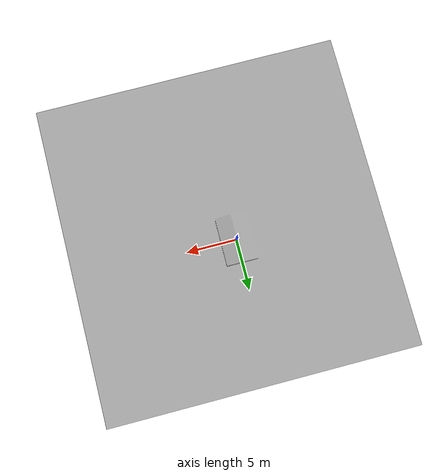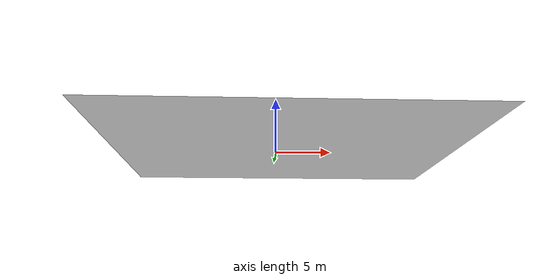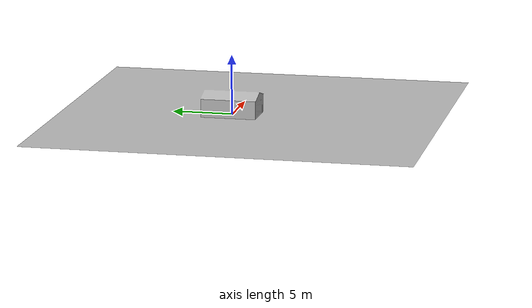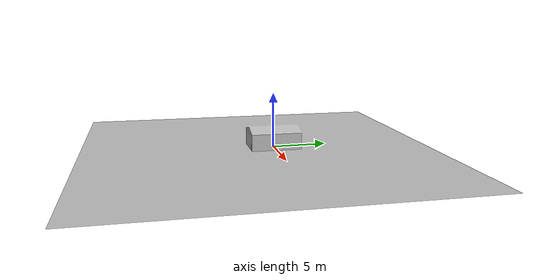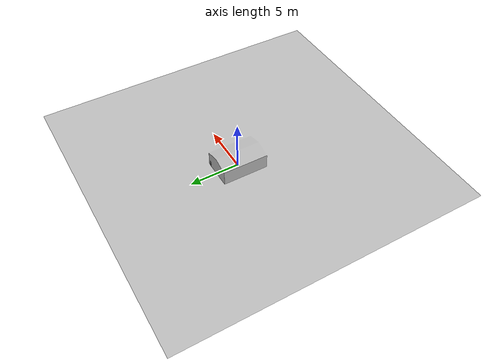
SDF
<?xml version='1.0'?>
<sdf version='1.5'>
  <model name='warehouse'>
    <static>true</static>
    <link name="warehouse">
        <collision name="collision">
            <geometry>
                <mesh>
		   <scale>0.3 0.3 0.3</scale>
                    <uri>model://warehouse/meshes/model.dae</uri>
                </mesh>
            </geometry>
        </collision>
	<visual name="visual">
            <geometry>
                <mesh>
		   <scale>0.3 0.3 0.3</scale>
                    <uri>model://warehouse/meshes/model.dae</uri>
                </mesh>
            </geometry>
        </visual>
    </link>
  </model>
</sdf>
